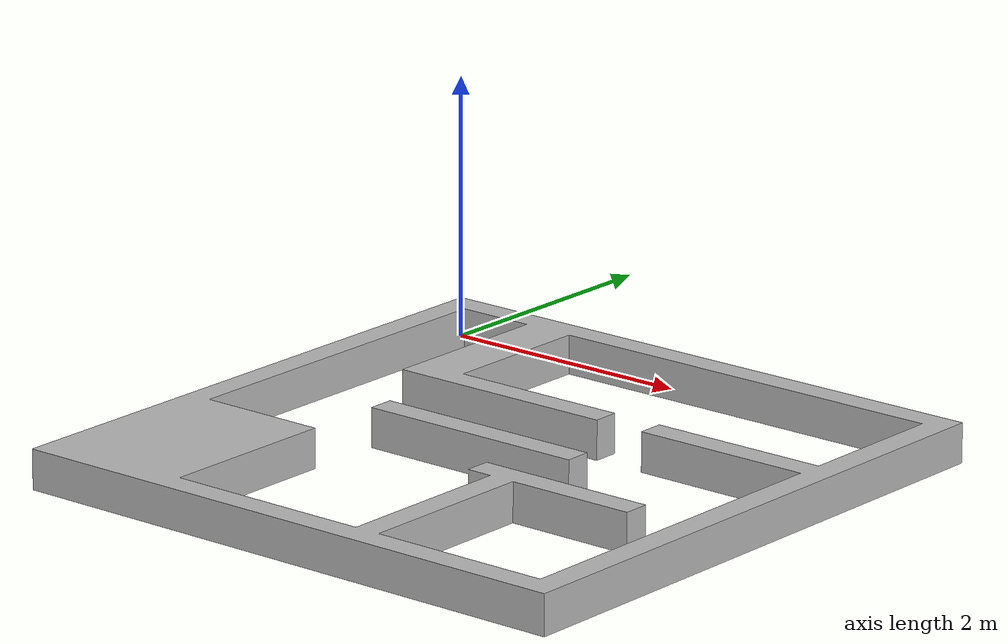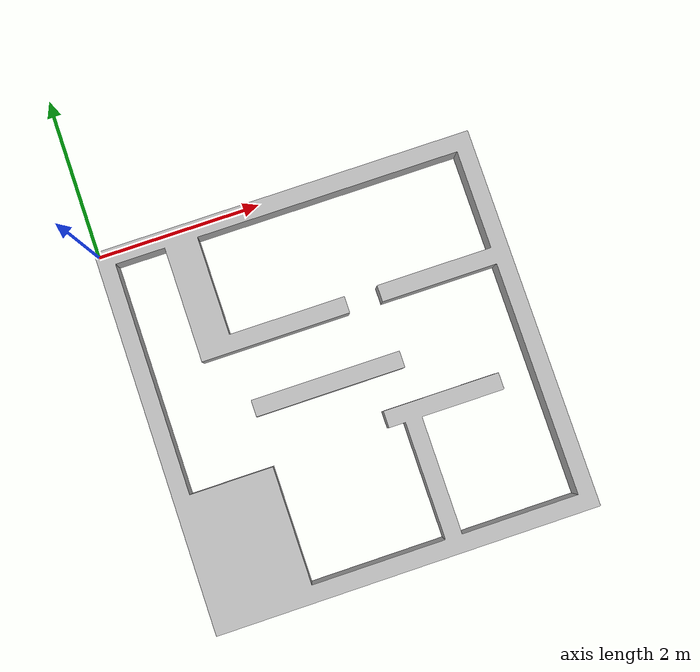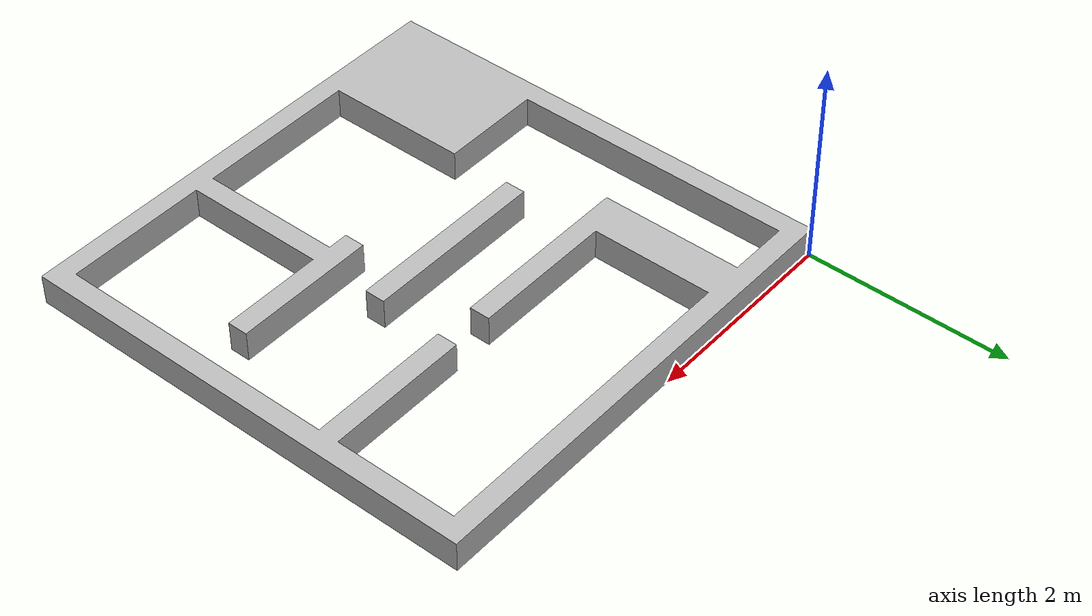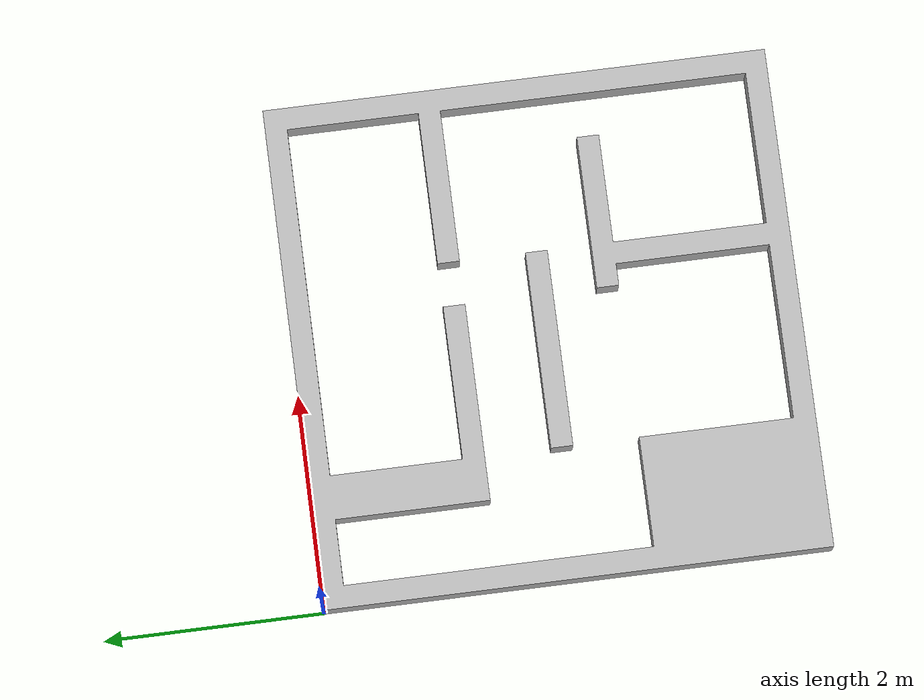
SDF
<sdf version='1.6'>
  <model name='world_b'>
    <link name='world_b'>
      <pose frame=''>0 0 0 0 -0 0</pose>
      <inertial>
        <pose frame=''>2.3 -2.3 0 0 -0 0</pose>
        <mass>100.319</mass>
        <inertia>
          <ixx>1000</ixx>
          <ixy>0</ixy>
          <ixz>0</ixz>
          <iyy>1000</iyy>
          <iyz>0</iyz>
          <izz>1000</izz>
        </inertia>
      </inertial>
      <collision name='world_b_collision'>
        <pose frame=''>0 0 0 1.57079632679 -0 0</pose>
        <geometry>
          <mesh>
            <scale>10 10 10</scale>
            <uri>model://world_b/meshes/world_b.STL</uri>
          </mesh>
        </geometry>
      </collision>
      <visual name='world_b_visual'>
        <pose frame=''>0 0 0 1.5708 -0 0</pose>
        <geometry>
          <mesh>
            <scale>10 10 10</scale>
            <uri>model://world_b/meshes/world_b.STL</uri>
          </mesh>
        </geometry>
      </visual>
    </link>
  </model>
</sdf>
